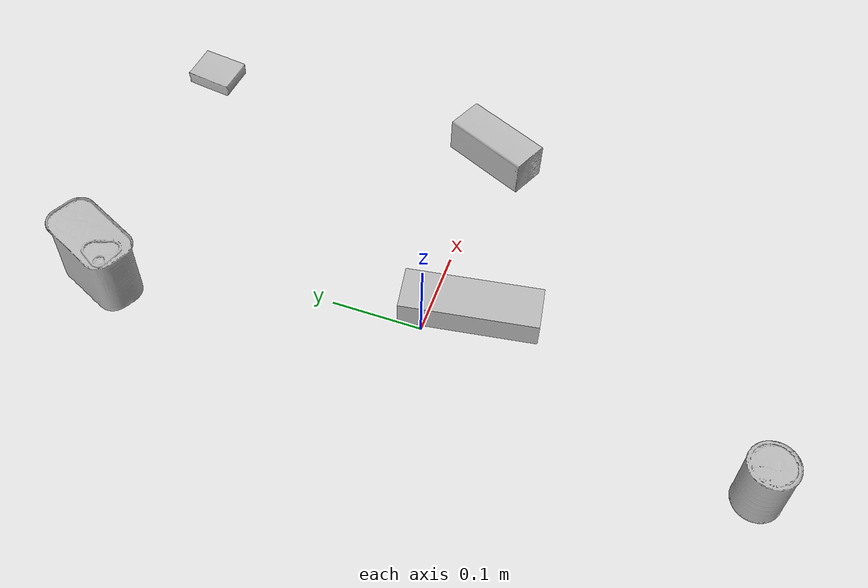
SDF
<sdf version="1.4">
  <world name="default">
    <light name="light1" type="point">
      <pose>0 0 1 0 0 0</pose>
      <diffuse>3 3 3 1</diffuse>
      <specular>3 3 3 1</specular>
    </light>
    <light name="light2" type="point">
      <pose>0 0.5 2 0 0 0</pose>
      <diffuse>1 1 1 1</diffuse>
      <specular>1 1 1 1</specular>
    </light>
    <light name="light3" type="point">
      <pose>0 0.5 2 0 0 0</pose>
      <diffuse>3 3 3 1</diffuse>
      <specular>3 3 3 1</specular>
    </light>
    <scene>
      <ambient>0.7 0.7 0.7</ambient>
    </scene>
    <model name="box1">
      <link name="link_box1">
        <collision name="default">
          <geometry>
            <mesh>
              <uri>model://pudding_box/collision_meshes/collision.obj</uri>
              <scale>0.5 0.5 0.5</scale>
            </mesh>
          </geometry>
          <surface>
            <friction>
              <ode>
                <mu>0.5</mu>
                <mu2>0.5</mu2>
              </ode>
            </friction>
          <contact>
        <ode>
            <max_vel>0</max_vel>
            <min_depth>0.0001</min_depth>
            <kp>1e8</kp>
        </ode>
    </contact></surface>
        </collision>
        <visual name="default">
          <geometry>
            <mesh>
              <uri>model://pudding_box/visual_meshes/visual.dae</uri>
              <scale>0.5 0.5 0.5</scale>
            </mesh>
          </geometry>
        </visual>
        <inertial>
          <mass>0.0642586499452591</mass>
          <pose>0.00024474109522998333 0.00040339428232982755 -0.0002594413817860186 0.005213101302141142 -0.006603800581388343 0.020079827019462423</pose>
          <inertia>
            <ixx>1.8160274e-05</ixx>
            <iyy>1.221836e-05</iyy>
            <izz>2.6818392e-05</izz>
            <ixy>0</ixy>
            <ixz>0</ixz>
            <iyz>0</iyz>
          </inertia>
        </inertial>
      </link>
      <pose>0.27190032601356506 0.3671250641345978 0.00986290629953146 0.02234847648946982 -0.011391777862677867 -0.10278385467171106</pose>
    </model>
    <model name="box2">
      <link name="link_box2">
        <collision name="default">
          <geometry>
            <mesh>
              <uri>model://wood_block/collision_meshes/collision.obj</uri>
              <scale>0.5 0.5 0.5</scale>
            </mesh>
          </geometry>
          <surface>
            <friction>
              <ode>
                <mu>0.5</mu>
                <mu2>0.5</mu2>
              </ode>
            </friction>
          <contact>
        <ode>
            <max_vel>0</max_vel>
            <min_depth>0.0001</min_depth>
            <kp>1e8</kp>
        </ode>
    </contact></surface>
        </collision>
        <visual name="default">
          <geometry>
            <mesh>
              <uri>model://wood_block/visual_meshes/visual.dae</uri>
              <scale>0.5 0.5 0.5</scale>
            </mesh>
          </geometry>
        </visual>
        <inertial>
          <mass>0.2432606816291809</mass>
          <pose>-2.9066577553749084e-06 -0.000285404734313488 0.00013204290007706732 -0.0522103103121059 -0.005192696448147362 -0.0068613788455752145</pose>
          <inertia>
            <ixx>8.1379905e-05</ixx>
            <iyy>0.0002570791</iyy>
            <izz>0.00025611752</izz>
            <ixy>0</ixy>
            <ixz>0</ixz>
            <iyz>0</iyz>
          </inertia>
        </inertial>
      </link>
      <pose>0.2588806748390198 -0.0021040979772806168 0.022629264742136 -0.0052084793561707945 0.005718701987249735 -1.9944275345018885</pose>
    </model>
    <model name="box3">
      <link name="link_box3">
        <collision name="default">
          <geometry>
            <mesh>
              <uri>model://jenga/collision_meshes/collision.obj</uri>
              <scale>1.0 1.0 1.0</scale>
            </mesh>
          </geometry>
          <surface>
            <friction>
              <ode>
                <mu>0.5</mu>
                <mu2>0.5</mu2>
              </ode>
            </friction>
          <contact>
        <ode>
            <max_vel>0</max_vel>
            <min_depth>0.0001</min_depth>
            <kp>1e8</kp>
        </ode>
    </contact></surface>
        </collision>
        <visual name="default">
          <geometry>
            <mesh>
              <uri>model://jenga/visual_meshes/visual.dae</uri>
              <scale>1.0 1.0 1.0</scale>
            </mesh>
          </geometry>
        </visual>
        <inertial>
          <mass>0.20405839383602142</mass>
          <pose>-2.502855807051674e-07 -0.00010250010382151231 -4.0923401684267446e-05 0.0 -7.342155186052628e-07 0.0</pose>
          <inertia>
            <ixx>5.6467907e-05</ixx>
            <iyy>0.000382625</iyy>
            <izz>0.00040848472</izz>
            <ixy>0</ixy>
            <ixz>0</ixz>
            <iyz>0</iyz>
          </inertia>
        </inertial>
      </link>
      <pose>0.03729567304253578 -0.04257935658097267 0.014999995939433575 4.8150809082483646e-08 1.438216590434409e-09 1.732718185652689</pose>
    </model>
    <model name="can1">
      <link name="link_can1">
        <collision name="default">
          <geometry>
            <mesh>
              <uri>model://potted_meat_can/collision_meshes/collision.obj</uri>
              <scale>1.0 1.0 1.0</scale>
            </mesh>
          </geometry>
          <surface>
            <friction>
              <ode>
                <mu>0.5</mu>
                <mu2>0.5</mu2>
              </ode>
            </friction>
          <contact>
        <ode>
            <max_vel>0</max_vel>
            <min_depth>0.0001</min_depth>
            <kp>1e8</kp>
        </ode>
    </contact></surface>
        </collision>
        <visual name="default">
          <geometry>
            <mesh>
              <uri>model://potted_meat_can/visual_meshes/visual.dae</uri>
              <scale>1.0 1.0 1.0</scale>
            </mesh>
          </geometry>
        </visual>
        <inertial>
          <mass>0.4665880799293518</mass>
          <pose>0.0002288814284838736 -5.989112105453387e-05 -0.0006367449532262981 -0.028093382538733707 -0.007232605550223235 0.01540626728411476</pose>
          <inertia>
            <ixx>0.0006002166</ixx>
            <iyy>0.0003646772</iyy>
            <izz>0.00043654343</izz>
            <ixy>0</ixy>
            <ixz>0</ixz>
            <iyz>0</iyz>
          </inertia>
        </inertial>
      </link>
      <pose>-0.058097995817661285 0.3475390672683716 0.042128000408411026 7.085769242873032e-08 -4.419153974825362e-07 -0.44812518304108934</pose>
    </model>
    <model name="can2">
      <link name="link_can2">
        <collision name="default">
          <geometry>
            <mesh>
              <uri>model://master_chef_can/collision_meshes/collision.obj</uri>
              <scale>0.5 0.5 0.5</scale>
            </mesh>
          </geometry>
          <surface>
            <friction>
              <ode>
                <mu>0.5</mu>
                <mu2>0.5</mu2>
              </ode>
            </friction>
          <contact>
        <ode>
            <max_vel>0</max_vel>
            <min_depth>0.0001</min_depth>
            <kp>1e8</kp>
        </ode>
    </contact></surface>
        </collision>
        <visual name="default">
          <geometry>
            <mesh>
              <uri>model://master_chef_can/visual_meshes/visual.dae</uri>
              <scale>0.5 0.5 0.5</scale>
            </mesh>
          </geometry>
        </visual>
        <inertial>
          <mass>0.1648906171321869</mass>
          <pose>-4.661964703700505e-05 1.3926853625889635e-07 -5.079993206891231e-05 -0.0017995099244119924 0.0006479308957776391 -0.6102586503741109</pose>
          <inertia>
            <ixx>9.677961e-05</ixx>
            <iyy>9.606731e-05</iyy>
            <izz>5.3478136e-05</izz>
            <ixy>0</ixy>
            <ixz>0</ixz>
            <iyz>0</iyz>
          </inertia>
        </inertial>
      </link>
      <pose>-0.07370903342962265 -0.36491742730140686 0.03530198335647583 -1.313849036326339e-06 -1.268843886229705e-06 2.4348900107543874</pose>
    </model>
  <physics type="ode">
      <max_contacts>50</max_contacts>
      <ode>
        <solver>
          <type>quick</type>
          <iters>75</iters>
        </solver>
        <constraints>
          <contact_max_correcting_vel>0</contact_max_correcting_vel>
          <contact_surface_layer>0</contact_surface_layer>
        </constraints>
      </ode>
    </physics></world>
</sdf>
